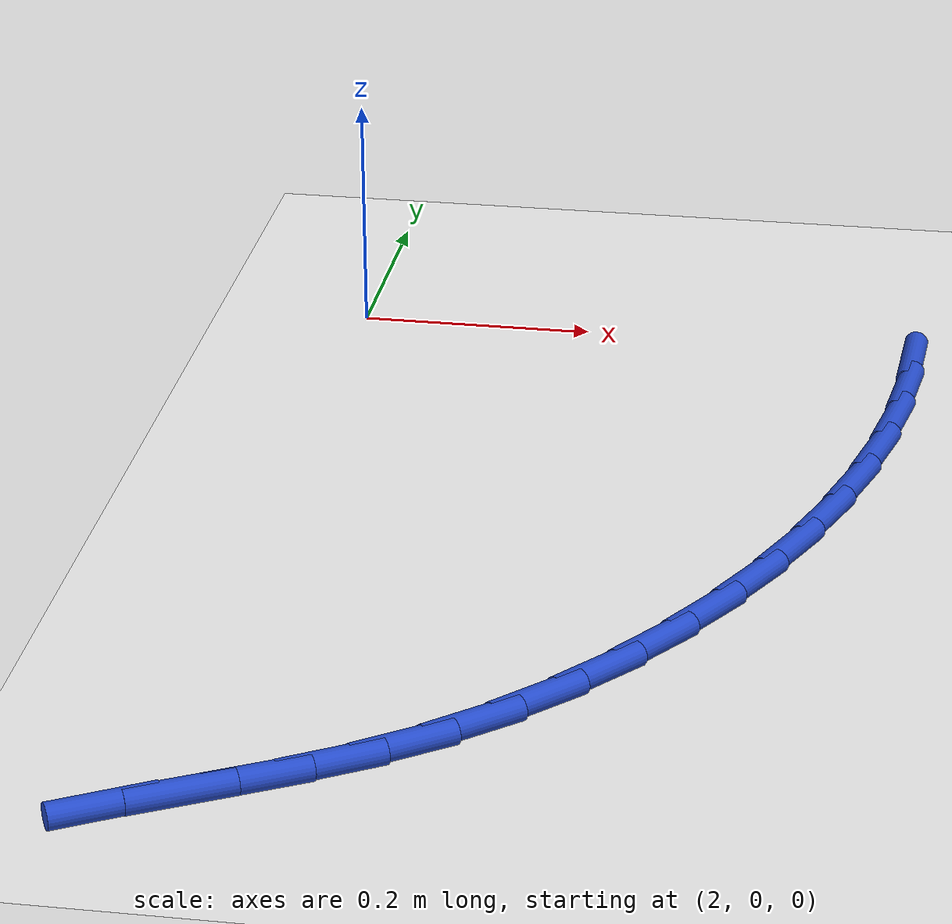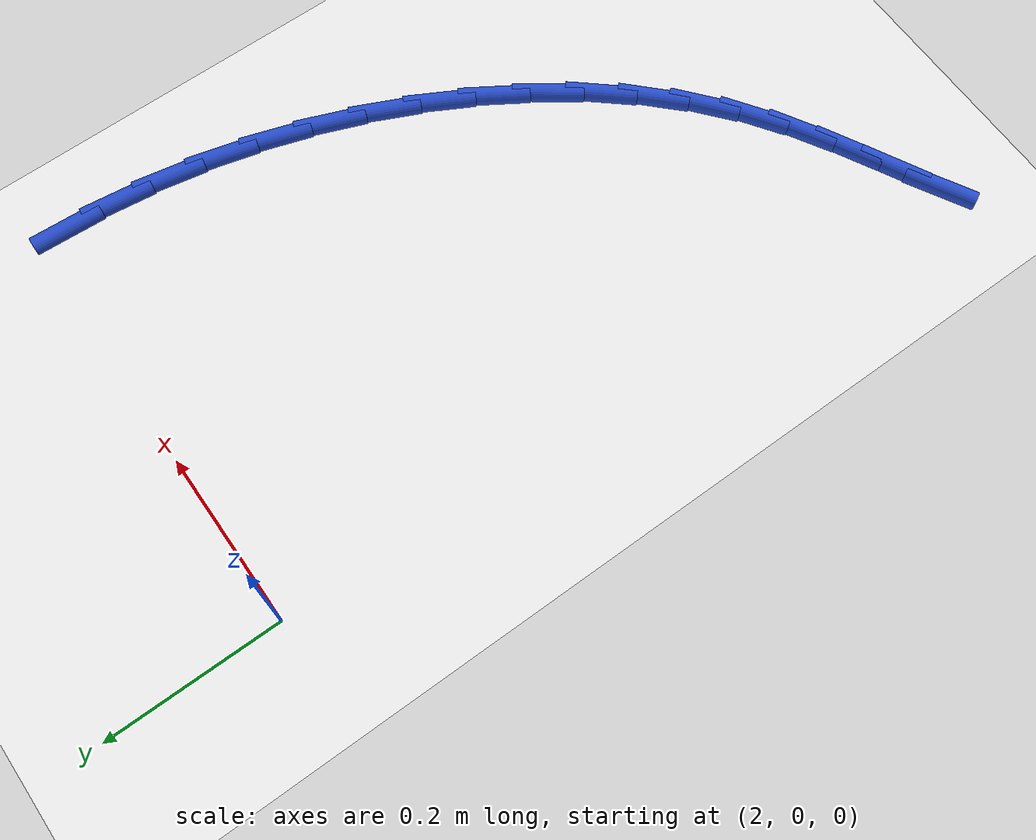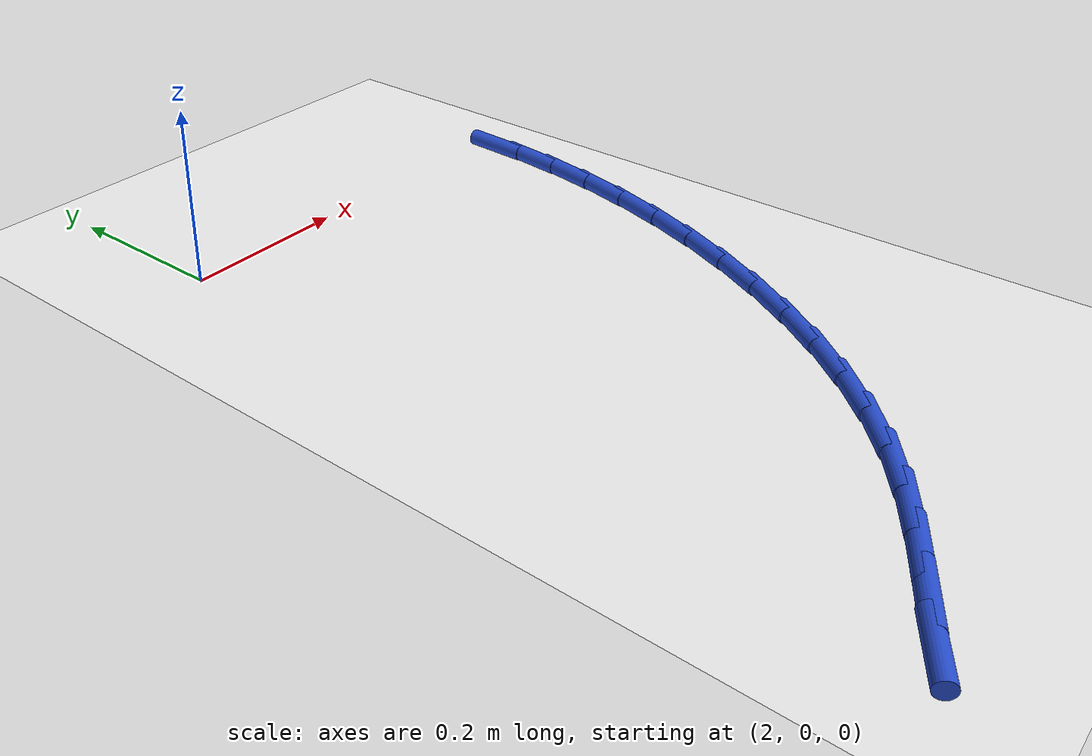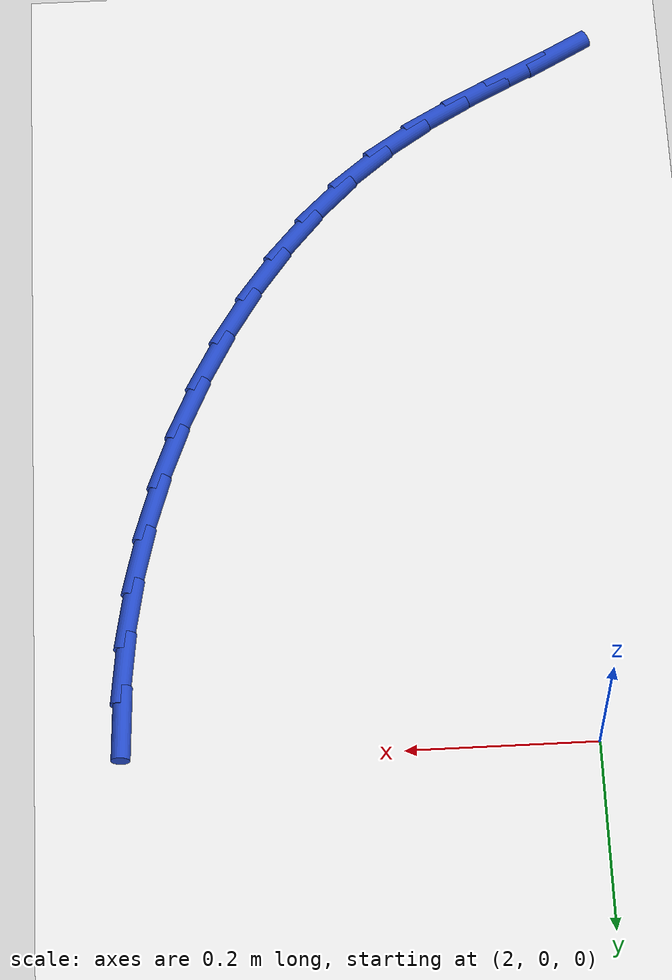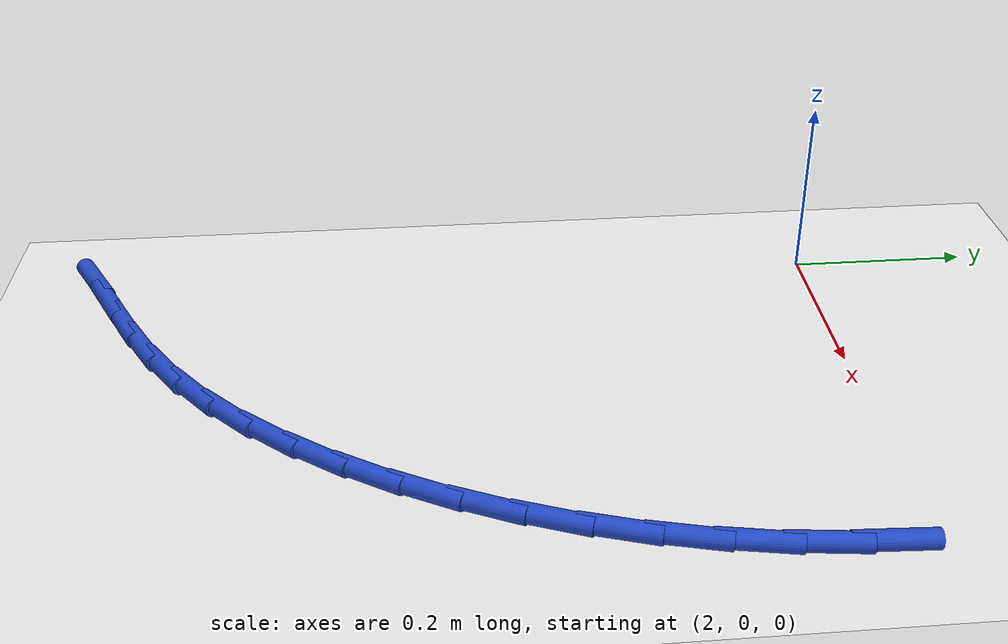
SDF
<sdf version="1.6">
 <world name="default">
  <model name="ground_plane">
   <static>1</static>
   <link name="link">
    <collision name="collision">
     <geometry><plane><normal>0 0 1</normal><size>100 100</size></plane></geometry>
     <surface><friction><ode><mu>100</mu><mu2>50</mu2></ode></friction></surface>
    </collision>
    <visual name="visual">
     <cast_shadows>0</cast_shadows>
     <geometry><plane><normal>0 0 1</normal><size>100 100</size></plane></geometry>
     <material>
      <script><uri>file://media/materials/scripts/gazebo.material</uri><name>Gazebo/WhiteGlow</name></script>
     </material>
    </visual>
   </link>
  </model>
  <model name="line">
   <link name="link_70">
    <pose>2.487009554837773 -0.039558685852842695 0.01 0 1.57 1.5245815315321705</pose>
    <collision name="collision">
     <geometry><cylinder><radius>0.01</radius><length>0.08</length></cylinder></geometry>
    </collision>
    <visual name="visual">
     <material>
      <script><name>Gazebo/Blue</name><uri>file://media/materials/scripts/gazebo.material</uri></script>
     </material>
     <geometry><cylinder><radius>0.01</radius><length>0.08</length></cylinder></geometry>
    </visual>
   </link>
   <link name="link_71">
    <pose>2.484241131000071 -0.09941944259390101 0.01 0 1.57 1.455507088413543</pose>
    <collision name="collision">
     <geometry><cylinder><radius>0.01</radius><length>0.08</length></cylinder></geometry>
    </collision>
    <visual name="visual">
     <material>
      <script><name>Gazebo/Blue</name><uri>file://media/materials/scripts/gazebo.material</uri></script>
     </material>
     <geometry><cylinder><radius>0.01</radius><length>0.08</length></cylinder></geometry>
    </visual>
   </link>
   <link name="link_72">
    <pose>2.4772660983594244 -0.1596514485087068 0.01 0 1.57 1.3896100677225793</pose>
    <collision name="collision">
     <geometry><cylinder><radius>0.01</radius><length>0.08</length></cylinder></geometry>
    </collision>
    <visual name="visual">
     <material>
      <script><name>Gazebo/Blue</name><uri>file://media/materials/scripts/gazebo.material</uri></script>
     </material>
     <geometry><cylinder><radius>0.01</radius><length>0.08</length></cylinder></geometry>
    </visual>
   </link>
   <link name="link_73">
    <pose>2.466243807372263 -0.2198183248126394 0.01 0 1.57 1.3259145688125686</pose>
    <collision name="collision">
     <geometry><cylinder><radius>0.01</radius><length>0.08</length></cylinder></geometry>
    </collision>
    <visual name="visual">
     <material>
      <script><name>Gazebo/Blue</name><uri>file://media/materials/scripts/gazebo.material</uri></script>
     </material>
     <geometry><cylinder><radius>0.01</radius><length>0.08</length></cylinder></geometry>
    </visual>
   </link>
   <link name="link_74">
    <pose>2.4513336084950184 -0.2794836927210752 0.01 0 1.57 1.263474472808376</pose>
    <collision name="collision">
     <geometry><cylinder><radius>0.01</radius><length>0.08</length></cylinder></geometry>
    </collision>
    <visual name="visual">
     <material>
      <script><name>Gazebo/Blue</name><uri>file://media/materials/scripts/gazebo.material</uri></script>
     </material>
     <geometry><cylinder><radius>0.01</radius><length>0.08</length></cylinder></geometry>
    </visual>
   </link>
   <link name="link_75">
    <pose>2.432694852184123 -0.3382111734493939 0.01 0 1.57 1.2013607907406956</pose>
    <collision name="collision">
     <geometry><cylinder><radius>0.01</radius><length>0.08</length></cylinder></geometry>
    </collision>
    <visual name="visual">
     <material>
      <script><name>Gazebo/Blue</name><uri>file://media/materials/scripts/gazebo.material</uri></script>
     </material>
     <geometry><cylinder><radius>0.01</radius><length>0.08</length></cylinder></geometry>
    </visual>
   </link>
   <link name="link_76">
    <pose>2.4104868888960076 -0.39556438821297385 0.01 0 1.57 1.138644057847885</pose>
    <collision name="collision">
     <geometry><cylinder><radius>0.01</radius><length>0.08</length></cylinder></geometry>
    </collision>
    <visual name="visual">
     <material>
      <script><name>Gazebo/Blue</name><uri>file://media/materials/scripts/gazebo.material</uri></script>
     </material>
     <geometry><cylinder><radius>0.01</radius><length>0.08</length></cylinder></geometry>
    </visual>
   </link>
   <link name="link_77">
    <pose>2.3848690690871033 -0.4511069582271932 0.01 0 1.57 1.0743749535342004</pose>
    <collision name="collision">
     <geometry><cylinder><radius>0.01</radius><length>0.08</length></cylinder></geometry>
    </collision>
    <visual name="visual">
     <material>
      <script><name>Gazebo/Blue</name><uri>file://media/materials/scripts/gazebo.material</uri></script>
     </material>
     <geometry><cylinder><radius>0.01</radius><length>0.08</length></cylinder></geometry>
    </visual>
   </link>
   <link name="link_78">
    <pose>2.356000743213841 -0.5044025047074315 0.01 0 1.57 1.0075659904918624</pose>
    <collision name="collision">
     <geometry><cylinder><radius>0.01</radius><length>0.08</length></cylinder></geometry>
    </collision>
    <visual name="visual">
     <material>
      <script><name>Gazebo/Blue</name><uri>file://media/materials/scripts/gazebo.material</uri></script>
     </material>
     <geometry><cylinder><radius>0.01</radius><length>0.08</length></cylinder></geometry>
    </visual>
   </link>
   <link name="link_79">
    <pose>2.324041261732653 -0.5550146488690655 0.01 0 1.57 0.9371778378492348</pose>
    <collision name="collision">
     <geometry><cylinder><radius>0.01</radius><length>0.08</length></cylinder></geometry>
    </collision>
    <visual name="visual">
     <material>
      <script><name>Gazebo/Blue</name><uri>file://media/materials/scripts/gazebo.material</uri></script>
     </material>
     <geometry><cylinder><radius>0.01</radius><length>0.08</length></cylinder></geometry>
    </visual>
   </link>
   <link name="link_80">
    <pose>2.2891499750999698 -0.6025070119274741 0.01 0 1.57 0.8621157560296809</pose>
    <collision name="collision">
     <geometry><cylinder><radius>0.01</radius><length>0.08</length></cylinder></geometry>
    </collision>
    <visual name="visual">
     <material>
      <script><name>Gazebo/Blue</name><uri>file://media/materials/scripts/gazebo.material</uri></script>
     </material>
     <geometry><cylinder><radius>0.01</radius><length>0.08</length></cylinder></geometry>
    </visual>
   </link>
   <link name="link_81">
    <pose>2.2514862337722223 -0.6464432150980362 0.01 0 1.57 0.7812448720229122</pose>
    <collision name="collision">
     <geometry><cylinder><radius>0.01</radius><length>0.08</length></cylinder></geometry>
    </collision>
    <visual name="visual">
     <material>
      <script><name>Gazebo/Blue</name><uri>file://media/materials/scripts/gazebo.material</uri></script>
     </material>
     <geometry><cylinder><radius>0.01</radius><length>0.08</length></cylinder></geometry>
    </visual>
   </link>
   <link name="link_82">
    <pose>2.211209388205842 -0.6863868795961305 0.01 0 1.57 0.6934374243899813</pose>
    <collision name="collision">
     <geometry><cylinder><radius>0.01</radius><length>0.08</length></cylinder></geometry>
    </collision>
    <visual name="visual">
     <material>
      <script><name>Gazebo/Blue</name><uri>file://media/materials/scripts/gazebo.material</uri></script>
     </material>
     <geometry><cylinder><radius>0.01</radius><length>0.08</length></cylinder></geometry>
    </visual>
   </link>
   <link name="link_83">
    <pose>2.1684787888572603 -0.7219016266371345 0.01 0 1.57 0.6007351927010026</pose>
    <collision name="collision">
     <geometry><cylinder><radius>0.01</radius><length>0.08</length></cylinder></geometry>
    </collision>
    <visual name="visual">
     <material>
      <script><name>Gazebo/Blue</name><uri>file://media/materials/scripts/gazebo.material</uri></script>
     </material>
     <geometry><cylinder><radius>0.01</radius><length>0.08</length></cylinder></geometry>
    </visual>
   </link>
   <link name="link_84">
    <pose>2.1235038649126152 -0.7527191931896373 0.01 0 1.57 0.5275081607089155</pose>
    <collision name="collision">
     <geometry><cylinder><radius>0.01</radius><length>0.08</length></cylinder></geometry>
    </collision>
    <visual name="visual">
     <material>
      <script><name>Gazebo/Blue</name><uri>file://media/materials/scripts/gazebo.material</uri></script>
     </material>
     <geometry><cylinder><radius>0.01</radius><length>0.08</length></cylinder></geometry>
    </visual>
   </link>
   <link name="link_85">
    <pose>2.0768835780687236 -0.7798789881982819 0.01 0 1.57 0.48715185390652893</pose>
    <collision name="collision">
     <geometry><cylinder><radius>0.01</radius><length>0.08</length></cylinder></geometry>
    </collision>
    <visual name="visual">
     <material>
      <script><name>Gazebo/Blue</name><uri>file://media/materials/scripts/gazebo.material</uri></script>
     </material>
     <geometry><cylinder><radius>0.01</radius><length>0.08</length></cylinder></geometry>
    </visual>
   </link>
   <link name="link_86">
    <pose>2.029399379024459 -0.8050330414991231 0.01 0 1.57 0.4806724931609764</pose>
    <collision name="collision">
     <geometry><cylinder><radius>0.01</radius><length>0.08</length></cylinder></geometry>
    </collision>
    <visual name="visual">
     <material>
      <script><name>Gazebo/Blue</name><uri>file://media/materials/scripts/gazebo.material</uri></script>
     </material>
     <geometry><cylinder><radius>0.01</radius><length>0.08</length></cylinder></geometry>
    </visual>
   </link>
   <link name="link_87">
    <pose>1.9818337627832439 -0.8298368886889794 0.01 0 1.57 0.5082932638680236</pose>
    <collision name="collision">
     <geometry><cylinder><radius>0.01</radius><length>0.08</length></cylinder></geometry>
    </collision>
    <visual name="visual">
     <material>
      <script><name>Gazebo/Blue</name><uri>file://media/materials/scripts/gazebo.material</uri></script>
     </material>
     <geometry><cylinder><radius>0.01</radius><length>0.08</length></cylinder></geometry>
    </visual>
   </link>
  </model>
 </world>
</sdf>
